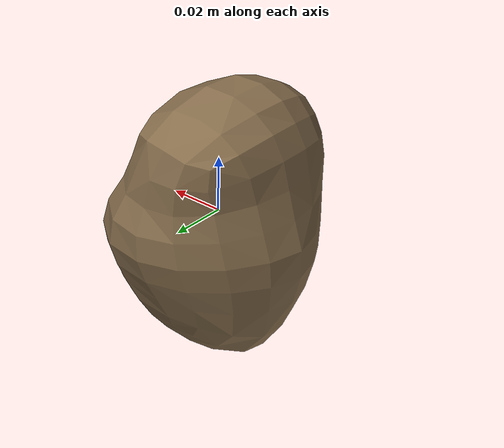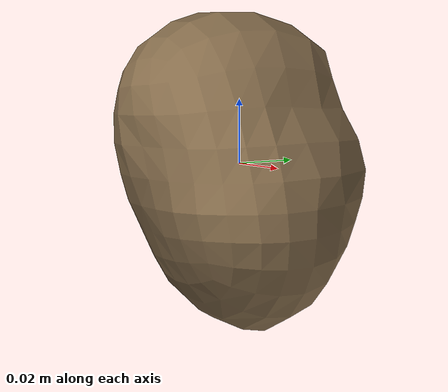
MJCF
<mujoco model="Potato_7">
  <compiler autolimits="true" boundmass="0.01" angle="radian"/>
  <default>
    <default class="/">
      <default class="__VISUAL_MJT__">
        <geom contype="0" conaffinity="0" group="0"/>
      </default>
      <default class="__STRUCTURAL_MJT__">
        <geom contype="8" conaffinity="15" group="4" friction="0.90000000000000002 0.90000000000000002 0.001" solref="0.025000000000000001 1" solimp="0.998 0.998 0.001"/>
      </default>
      <default class="__DYNAMIC_MJT__">
        <geom contype="1" conaffinity="15" group="4" friction="0.90000000000000002 0.90000000000000002 0.001" solref="0.025000000000000001 1" solimp="0.998 0.998 0.001"/>
      </default>
    </default>
  </default>
  <asset>
    <texture name="Potato1_Mat2" type="2d" file="Potato1_AlbedoTransparency.png"/>
    <material name="material_Potato1_Mat2" class="/" texture="Potato1_Mat2" specular="0.5" shininess="0.5" rgba="0.69852939999999997 0.59066830000000003 0.434 1"/>
    <mesh name="Potato_7_potato_a7" class="/" file="Potato_7_potato_a7/Potato_7_potato_a7.obj" scale="1 1 1"/>
  </asset>
  <worldbody>
    <body name="Potato_7">
      <joint name="Potato_7_free" class="/" type="free" pos="0 0 0" axis="0 0 1" stiffness="0" range="0 0" armature="0" damping="0.10000000000000001" frictionloss="0"/>
      <body name="Potato_7_potato_a7" pos="-0.008579999606609344 0.0066800000081956388 -0.0031099999999999999" quat="1 0 0 0">
        <geom name="Potato_7_potato_a7" class="__VISUAL_MJT__" type="mesh" material="material_Potato1_Mat2" shellinertia="true" mesh="Potato_7_potato_a7"/>
        <geom name="Potato_7_PrimitiveCollider_0" class="__DYNAMIC_MJT__" type="capsule" size="0.038991346955299377 0.012065872550010681" rgba="0 1 0 1" pos="0.0015185177326202393 -0.00038396776653826237 0.0031108271796256304" quat="1.4751396609986736e-06 0.99999999999891198 0 0"/>
      </body>
    </body>
  </worldbody>
</mujoco>
